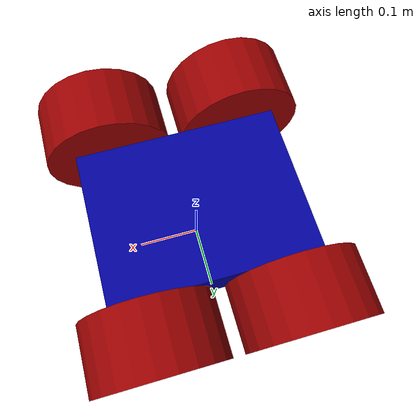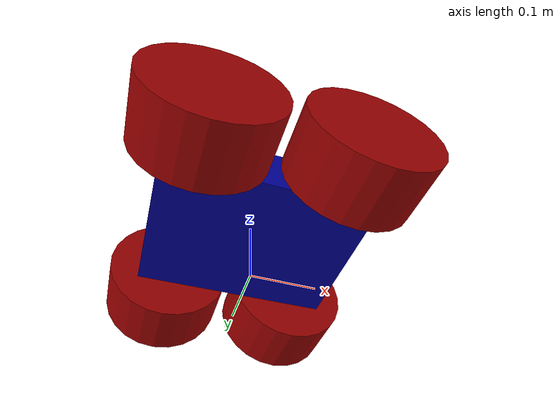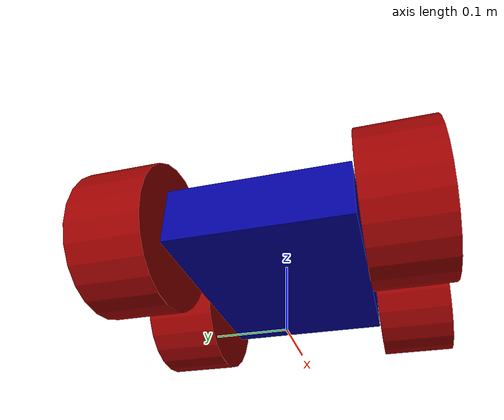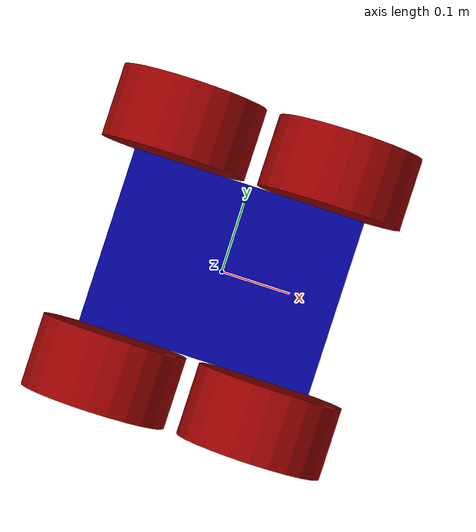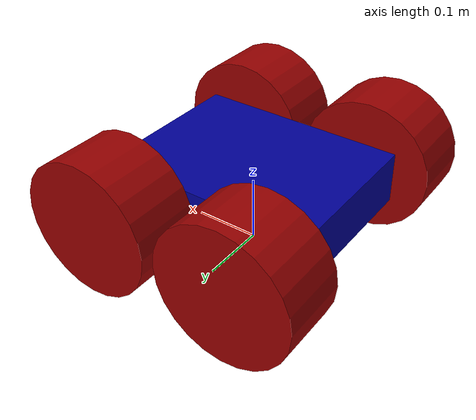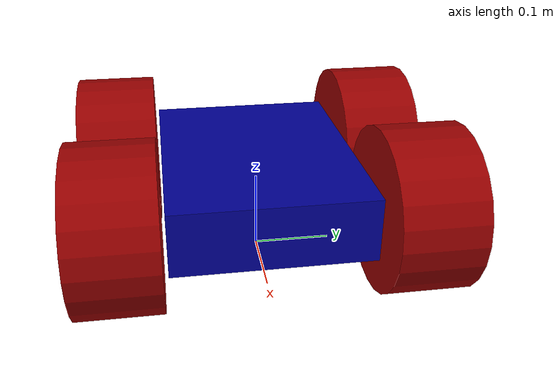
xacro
<?xml version="1.0"?>
<robot xmlns:xacro="http://www.ros.org/wiki/xacro"  name="oruga">
    <xacro:arg name="use_imu" default="true" />
    <xacro:arg name="use_lidar" default="false" />
    <xacro:arg name="use_camera" default="false" />

    <xacro:include filename="a4wd3.xacro" />

    <xacro:include filename="imu.xacro" />
    <xacro:oruga_imu use_imu="$(arg use_imu)"/>

    <xacro:include filename="lidar.xacro" />
    <xacro:oruga_lidar use_lidar="$(arg use_lidar)" />

    <xacro:include filename="camera.xacro" />
    <xacro:oruga_camera use_camera="$(arg use_camera)" />

</robot>

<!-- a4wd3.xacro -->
<robot xmlns:xacro="http://www.ros.org/wiki/xacro">

  <xacro:include filename="inertial_macros.xacro" />
  <xacro:include filename="dimensions_macros.xacro" />
  <xacro:include filename="materials_macros.xacro" />

  <link name="base_link">
    <visual>
      <geometry>
        <box size="${chassis_length} ${chassis_width} ${chassis_height}" />
      </geometry>
      <origin xyz="0 0 -${chassis_height/2}" rpy="0 0 0" />
      <material name="blue" />
    </visual>
    <collision>
      <geometry>
        <box size="${chassis_length} ${chassis_width} ${chassis_height}" />
      </geometry>
      <origin xyz="0 0 -${chassis_height/2}" rpy="0 0 0" />
    </collision>
    <xacro:inertial_box mass="${chassis_weight}" x="${chassis_length}" y="${chassis_width}"
      z="${chassis_height}">
      <origin xyz="0 0 -${chassis_height/2}" rpy="0 0 0" />
    </xacro:inertial_box>
  </link>

  <!-- WHEELS -->
  <link name="fl_wheel_link">
    <visual>
      <geometry>
        <cylinder radius="${wheel_radius}" length="${wheel_width}" />
      </geometry>
      <origin xyz="0 0 0" rpy="1.57 0 0" />
      <material name="red" />
    </visual>
    <collision>
      <geometry>
        <cylinder radius="${wheel_radius}" length="${wheel_width}" />
      </geometry>
      <origin xyz="0 0 0" rpy="1.57 0 0" />
    </collision>
    <xacro:inertial_cylinder mass="0.05" length="${wheel_width}" radius="${wheel_radius}">
      <origin xyz="0 0 0" rpy="1.57 0 0" />
    </xacro:inertial_cylinder>
  </link>
  <joint name="fl_wheel_joint" type="continuous">
    <parent link="base_link" />
    <child link="fl_wheel_link" />
    <origin xyz="${wheel_offset_length} ${wheel_offset_width} ${wheel_offset_height}"
      rpy="0 0 0" />
    <axis xyz="0 1 0 " />
  </joint>

  <link name="fr_wheel_link">
    <visual>
      <geometry>
        <cylinder radius="${wheel_radius}" length="${wheel_width}" />
      </geometry>
      <origin xyz="0 0 0" rpy="1.57 0 0" />
      <material name="red" />
    </visual>
    <collision>
      <geometry>
        <cylinder radius="${wheel_radius}" length="${wheel_width}" />
      </geometry>
      <origin xyz="0 0 0" rpy="1.57 0 0" />
    </collision>
    <xacro:inertial_cylinder mass="0.05" length="${wheel_width}" radius="${wheel_radius}">
      <origin xyz="0 0 0" rpy="1.57 0 0" />
    </xacro:inertial_cylinder>
  </link>
  <joint name="fr_wheel_joint" type="continuous">
    <parent link="base_link" />
    <child link="fr_wheel_link" />
    <origin xyz="${wheel_offset_length} ${-wheel_offset_width} ${wheel_offset_height}"
      rpy="0 0 0" />
    <axis xyz="0 1 0 " />
  </joint>

  <link name="rl_wheel_link">
    <visual>
      <geometry>
        <cylinder radius="${wheel_radius}" length="${wheel_width}" />
      </geometry>
      <origin xyz="0 0 0" rpy="1.57 0 0" />
      <material name="red" />
    </visual>
    <collision>
      <geometry>
        <cylinder radius="${wheel_radius}" length="${wheel_width}" />
      </geometry>
      <origin xyz="0 0 0" rpy="1.57 0 0" />
    </collision>
    <xacro:inertial_cylinder mass="0.05" length="${wheel_width}" radius="${wheel_radius}">
      <origin xyz="0 0 0" rpy="1.57 0 0" />
    </xacro:inertial_cylinder>
  </link>
  <joint name="rl_wheel_joint" type="continuous">
    <parent link="base_link" />
    <child link="rl_wheel_link" />
    <origin xyz="${-wheel_offset_length} ${wheel_offset_width} ${wheel_offset_height}"
      rpy="0 0 0" />
    <axis xyz="0 1 0 " />
  </joint>

  <link name="rr_wheel_link">
    <visual>
      <geometry>
        <cylinder radius="${wheel_radius}" length="${wheel_width}" />
      </geometry>
      <origin xyz="0 0 0" rpy="1.57 0 0" />
      <material name="red" />
    </visual>
    <collision>
      <geometry>
        <cylinder radius="${wheel_radius}" length="${wheel_width}" />
      </geometry>
      <origin xyz="0 0 0" rpy="1.57 0 0" />
    </collision>
    <xacro:inertial_cylinder mass="0.05" length="${wheel_width}" radius="${wheel_radius}">
      <origin xyz="0 0 0" rpy="1.57 0 0" />
    </xacro:inertial_cylinder>
  </link>
  <joint name="rr_wheel_joint" type="continuous">
    <parent link="base_link" />
    <child link="rr_wheel_link" />
    <origin xyz="${-wheel_offset_length} ${-wheel_offset_width} ${wheel_offset_height}"
      rpy="0 0 0" />
    <axis xyz="0 1 0 " />
  </joint>

  <!-- BASE FOOTPRINT -->
  <link name="base_footprint" />
  <joint name="base_joint" type="fixed">
    <parent link="base_footprint" />
    <child link="base_link" />
    <origin xyz="0 0 ${wheel_radius-wheel_offset_height}" rpy="0 0 0" />
  </joint>

</robot>

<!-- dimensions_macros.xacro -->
<robot xmlns:xacro="http://www.ros.org/wiki/xacro" >

<!-- https://wiki.lynxmotion.com/info/wiki/lynxmotion/view/rover-kits/a4wd3-tracked/ -->

    <xacro:property name="chassis_length" value="0.320"/>
    <xacro:property name="chassis_width" value="0.241"/>
    <xacro:property name="chassis_height" value="0.0785"/>
    <xacro:property name="chassis_weight" value="7.0"/> <!--FIXME-->

    <xacro:property name="lidar_height" value="0.05"/>
    <xacro:property name="lidar_radius" value="0.05"/>
    <xacro:property name="lidar_offset_length" value="0.1"/>
    <xacro:property name="lidar_offset_width" value="0"/>
    <xacro:property name="lidar_offset_height" value="0.025"/>

    <xacro:property name="imu_offset_length" value="0.1"/>
    <xacro:property name="imu_offset_width" value="0"/>
    <xacro:property name="imu_offset_height" value="-0.025"/>
    <xacro:property name="imu_offset_r" value="0"/>
    <xacro:property name="imu_offset_p" value="0"/>
    <xacro:property name="imu_offset_y" value="0"/>

    <xacro:property name="camera_length" value="0.01"/>
    <xacro:property name="camera_width" value="0.04"/>
    <xacro:property name="camera_height" value="0.02"/>
    <xacro:property name="camera_offset_length" value="0.15"/>
    <xacro:property name="camera_offset_width" value="0"/>
    <xacro:property name="camera_offset_height" value="0.01"/>

    <xacro:property name="wheel_width" value="0.100"/>  <!--FIXME-->
    <xacro:property name="wheel_radius" value="0.101"/>
    <xacro:property name="wheel_offset_length" value="0.110"/> <!--FIXME-->
    <xacro:property name="wheel_offset_width" value="0.17575"/> <!--FIXME-->
    <xacro:property name="wheel_offset_height" value="-0.03925"/>

</robot>

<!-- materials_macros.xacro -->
<robot xmlns:xacro="http://www.ros.org/wiki/xacro" >

    <material name="red">
        <color rgba="0.6 0 0 1" />
    </material>
    <material name="green">
        <color rgba="0 0.6 0 1" />
    </material>
    <material name="blue">
        <color rgba="0 0 0.6 1" />
    </material>

</robot>

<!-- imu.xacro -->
<robot xmlns:xacro="http://www.ros.org/wiki/xacro">

  <xacro:macro name="oruga_imu" params="use_imu">

    <xacro:if value="${use_imu}">

      <link name="imu_link"></link>

      <joint name="base_imu_joint" type="fixed">
        <parent link="base_link" />
        <child link="imu_link" />
        <origin xyz="${imu_offset_length} ${imu_offset_width} ${imu_offset_height}"
          rpy="${imu_offset_r} ${imu_offset_p} ${imu_offset_y}" />
      </joint>

    </xacro:if>

  </xacro:macro>
</robot>
